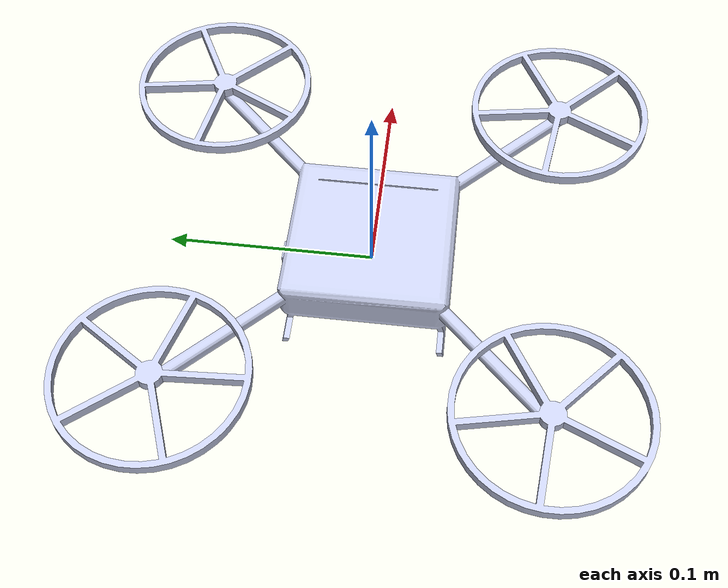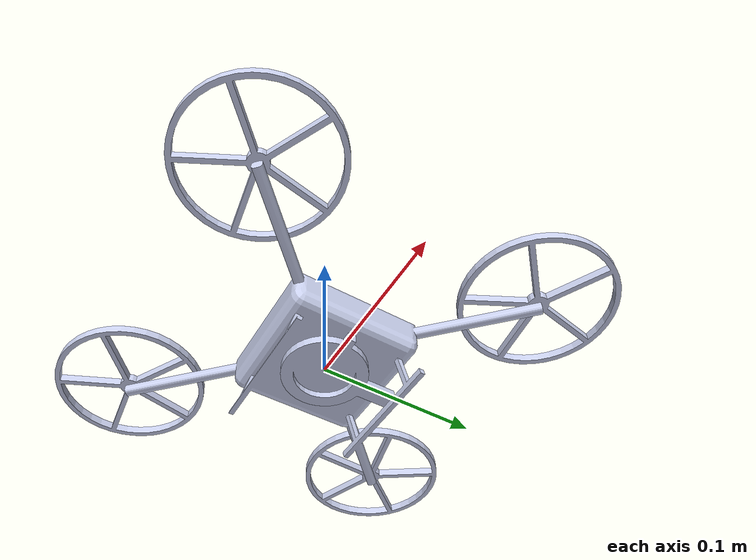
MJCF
<mujoco model="Drone_ver1_urdf">
    <compiler angle="radian" meshdir="meshes/" />
    <size njmax="500" nconmax="100" />
    <asset>
        <mesh name="reference_plate" file="reference_plate.STL" />
        <mesh name="main_body" file="main_body.STL" />
        <mesh name="FL_blade" file="FL_blade.STL" />
        <mesh name="BL_blade" file="BL_blade.STL" />
        <mesh name="FR_blade" file="FR_blade.STL" />
        <mesh name="BR_blade" file="BR_blade.STL" />
    </asset>
    <worldbody>
        <geom type="mesh" contype="0" conaffinity="0" group="1" rgba="0.792157 0.819608 0.933333 1" mesh="reference_plate" />
        <geom type="mesh" rgba="0.792157 0.819608 0.933333 1" mesh="reference_plate" />
        <body name="main_body" pos="0 0 0" quat="0.653281 -0.653281 -0.270598 0.270598">
            <inertial pos="1.51341e-05 -0.0114215 -1.51759e-05" quat="0.653416 0.270518 0.27062 0.653171" mass="0.153935" diaginertia="0.00022914 0.000122973 0.000121538" />
            <joint name="ref_to_mainbody" pos="0 0 0" axis="0 1 0" />
            <geom type="mesh" contype="0" conaffinity="0" group="1" rgba="0.792157 0.819608 0.933333 1" mesh="main_body" />
            <geom type="mesh" rgba="0.792157 0.819608 0.933333 1" mesh="main_body" />
            <body name="FL_blade" pos="0.123715 -0.018 0" quat="0 -0.950714 0 -0.310071">
                <inertial pos="0 0.0025 0" quat="0.5 0.5 0.5 0.5" mass="0.00736933" diaginertia="9.62503e-06 4.82787e-06 4.82787e-06" />
                <joint name="FL_joint" pos="0 0 0" axis="0 1 0" />
                <geom type="mesh" contype="0" conaffinity="0" group="1" rgba="0.792157 0.819608 0.933333 1" mesh="FL_blade" />
                <geom type="mesh" rgba="0.792157 0.819608 0.933333 1" mesh="FL_blade" />
            </body>
            <body name="BL_blade" pos="0 -0.018 0.123715" quat="0.630389 0 -0.77628 0">
                <inertial pos="0 -0.0025 0" quat="0.707107 0 0 0.707107" mass="0.00736933" diaginertia="9.62503e-06 4.82787e-06 4.82787e-06" />
                <joint name="BL_joint" pos="0 0 0" axis="0 1 0" />
                <geom type="mesh" contype="0" conaffinity="0" group="1" rgba="0.792157 0.819608 0.933333 1" mesh="BL_blade" />
                <geom type="mesh" rgba="0.792157 0.819608 0.933333 1" mesh="BL_blade" />
            </body>
            <body name="FR_blade" pos="0 -0.018 -0.123715" quat="0 -0.951214 0 0.308532">
                <inertial pos="0 0.0025 0" quat="0.707107 0 0 0.707107" mass="0.00736933" diaginertia="9.62503e-06 4.82787e-06 4.82787e-06" />
                <joint name="FR_joint" pos="0 0 0" axis="0 1 0" />
                <geom type="mesh" contype="0" conaffinity="0" group="1" rgba="0.792157 0.819608 0.933333 1" mesh="FR_blade" />
                <geom type="mesh" rgba="0.792157 0.819608 0.933333 1" mesh="FR_blade" />
            </body>
            <body name="BR_blade" pos="-0.123715 -0.018 0" quat="0.28506 0 -0.95851 0">
                <inertial pos="0 -0.0025 0" quat="0.707107 0 0 0.707107" mass="0.00736933" diaginertia="9.62503e-06 4.82787e-06 4.82787e-06" />
                <joint name="BR_joint" pos="0 0 0" axis="0 1 0" />
                <geom type="mesh" contype="0" conaffinity="0" group="1" rgba="0.792157 0.819608 0.933333 1" mesh="BR_blade" />
                <geom type="mesh" rgba="0.792157 0.819608 0.933333 1" mesh="BR_blade" />
            </body>
        </body>
    </worldbody>
</mujoco>
